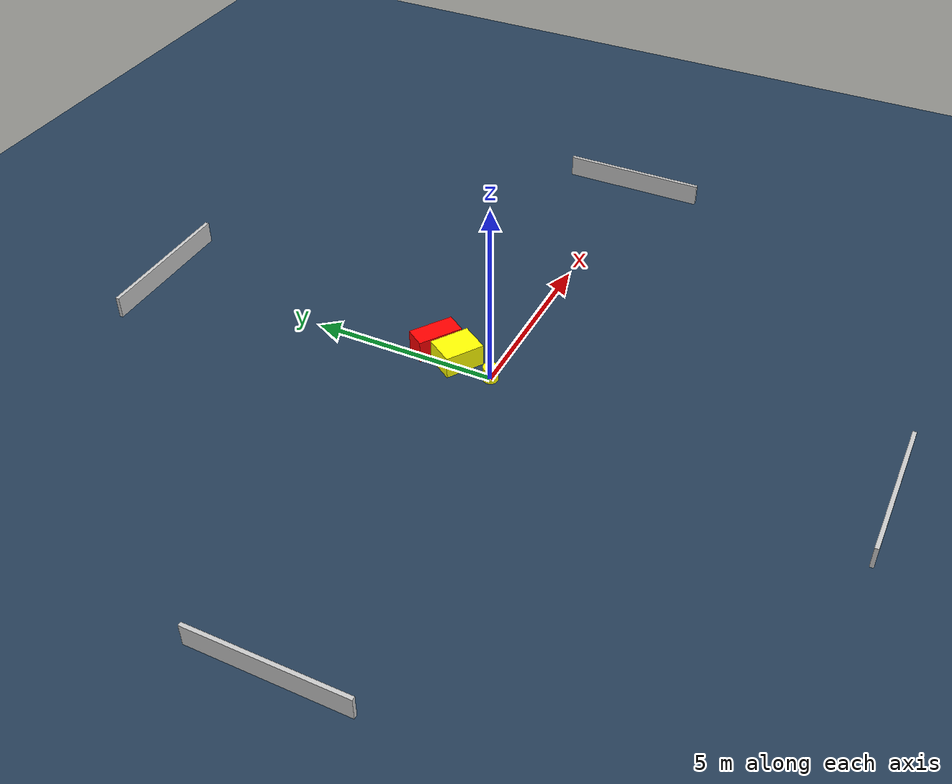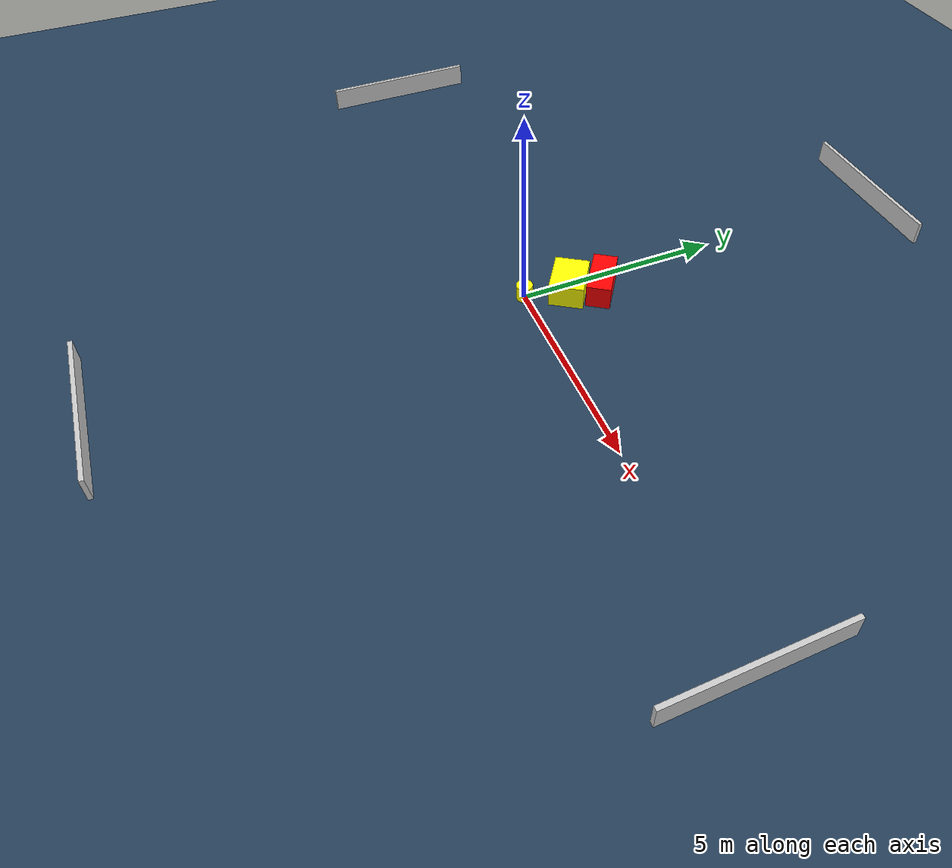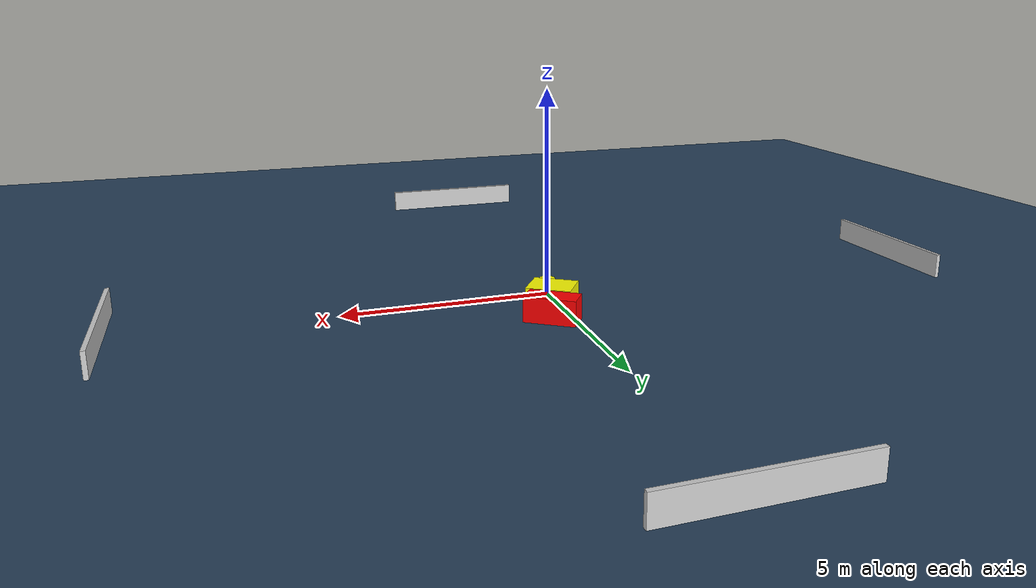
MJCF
<?xml version="1.0" ?>
<mujoco model="generated_environment">
  <option timestep="0.01" integrator="RK4" cone="elliptic"/>
  <default>
    <geom density="1"/>
  </default>
  <asset>
    <texture builtin="gradient" height="3072" name="skybox" rgb1="0.3 0.5 0.7" rgb2="0 0 0" type="skybox" width="512"/>
    <texture builtin="checker" height="300" name="groundplane" rgb1="0.2 0.3 0.4" rgb2="0.1 0.2 0.3" type="2d" width="300"/>
    <material name="groundplane" reflectance="0.2" texrepeat="5 5" texture="groundplane"/>
  </asset>
  <worldbody>
    <light dir="0 0 -1" directional="true" pos="0 0 1.5"/>
    <geom condim="3" friction="0.5 0.005 0.001" material="groundplane" name="floor" pos="0 0 0" size="0 0 0.05" type="plane"/>
    <body name="walls">
      <geom name="wall_1" condim="4" pos="-10.0 0.0 0.3" rgba="0.800000011920929 0.800000011920929 0.800000011920929 1.0" size="0.05 2.0 0.3" type="box"/>
      <geom name="wall_2" condim="4" pos="10.0 0.0 0.3" rgba="0.800000011920929 0.800000011920929 0.800000011920929 1.0" size="0.05 2.0 0.3" type="box"/>
      <geom name="wall_3" condim="4" pos="0.0 -10.0 0.3" rgba="0.800000011920929 0.800000011920929 0.800000011920929 1.0" size="2.0 0.05 0.3" type="box"/>
      <geom name="wall_4" condim="4" pos="0.0 10.0 0.3" rgba="0.800000011920929 0.800000011920929 0.800000011920929 1.0" size="2.0 0.05 0.3" type="box"/>
    </body>
    <body name="robot">
      <joint name="joint_x" type="slide" pos="0 0 0" axis="1 0 0"/>
      <joint name="joint_y" type="slide" pos="0 0 0" axis="0 1 0"/>
      <geom name="robot" type="cylinder" pos="0.0 0.0 0.2" size="0.2 0.2 0.0" mass="5.0" friction="1.0 0.005 0.0001" condim="4" rgba="1.0 1.0 0.0 1.0"/>
    </body>
    <body name="obstacle_1_movable">
      <geom name="obstacle_1_movable" condim="4" pos="0.23752936866481258 1.0589371507016385 0.3" euler="0 0 56.531589519452936" friction="0.0 0.005 0.001" rgba="1.0 1.0 0.0 1.0" size="0.4174357644847092 0.5314505340983093 0.3" type="box" mass="0.1"/>
      <joint type="free"/>
    </body>
    <body name="obstacle_2_static">
      <geom name="obstacle_2_static" condim="4" pos="0.4896616960210063 1.80322541193906 0.3" euler="0 0 55.5672526994345" friction="0.0 0.005 0.001" rgba="1.0 0.0 0.0 1.0" size="0.2910717045817719 0.609577959507908 0.3" type="box"/>
    </body>
  </worldbody>
  <actuator>
    <motor name="actuator_x" joint="joint_x" gear="1" ctrlrange="-1 1"/>
    <motor name="actuator_y" joint="joint_y" gear="1" ctrlrange="-1 1"/>
  </actuator>
</mujoco>
